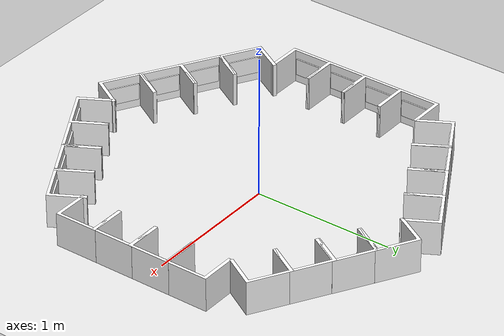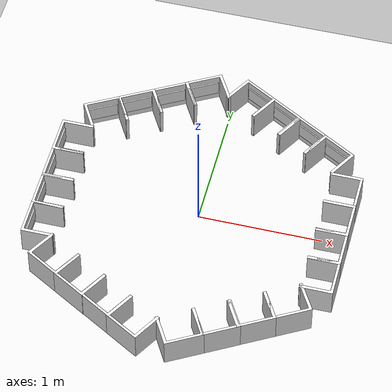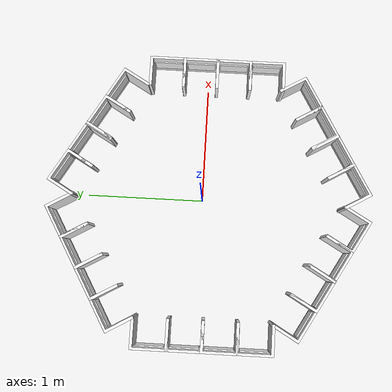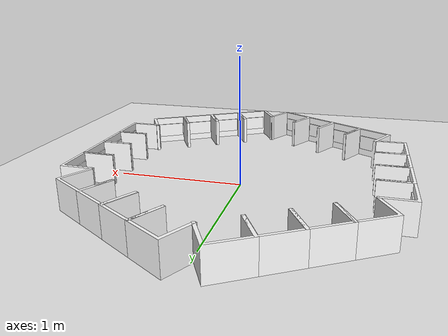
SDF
<sdf version='1.7'>
  <world name='tam_experiment'>
    <light name='sun' type='directional'>
      <cast_shadows>1</cast_shadows>
      <pose>0 0 4 0 -0 0</pose>
      <diffuse>1 1 1 1</diffuse>
      <specular>0.6 0.6 0.6 1</specular>
      <attenuation>
        <range>1500</range>
        <constant>0.9</constant>
        <linear>0.01</linear>
        <quadratic>0.005</quadratic>
      </attenuation>
      <direction>-0.5 0.1 -0.9</direction>
      <spot>
        <inner_angle>0</inner_angle>
        <outer_angle>0</outer_angle>
        <falloff>0</falloff>
      </spot>
    </light>
    <model name='ground_plane'>
      <static>1</static>
      <link name='link'>
        <collision name='collision'>
          <geometry>
            <plane>
              <normal>0 0 1</normal>
              <size>100 100</size>
            </plane>
          </geometry>
          <surface>
            <contact>
              <collide_bitmask>65535</collide_bitmask>
              <ode/>
            </contact>
            <friction>
              <ode>
                <mu>100</mu>
                <mu2>50</mu2>
              </ode>
              <torsional>
                <ode/>
              </torsional>
            </friction>
            <bounce/>
          </surface>
          <max_contacts>10</max_contacts>
        </collision>
        <visual name='visual'>
          <cast_shadows>0</cast_shadows>
          <geometry>
            <plane>
              <normal>0 0 1</normal>
              <size>100 100</size>
            </plane>
          </geometry>
          <material>
            <script>
              <uri>file://media/materials/scripts/gazebo.material</uri>
              <name>Gazebo/White</name>
            </script>
          </material>
        </visual>
        <self_collide>0</self_collide>
        <enable_wind>0</enable_wind>
        <kinematic>0</kinematic>
      </link>
    </model>
    <gravity>0 0 -9.8</gravity>
    <magnetic_field>6e-06 2.3e-05 -4.2e-05</magnetic_field>
    <atmosphere type='adiabatic'/>
    <physics type='ode'>
      <max_step_size>0.001</max_step_size>
      <real_time_factor>1</real_time_factor>
      <real_time_update_rate>1000</real_time_update_rate>
    </physics>
    <scene>
      <ambient>0.4 0.4 0.4 1</ambient>
      <background>0.7 0.7 0.7 1</background>
      <shadows>1</shadows>
    </scene>
    <wind/>
    <spherical_coordinates>
      <surface_model>EARTH_WGS84</surface_model>
      <latitude_deg>0</latitude_deg>
      <longitude_deg>0</longitude_deg>
      <elevation>0</elevation>
      <heading_deg>0</heading_deg>
    </spherical_coordinates>
    <gui fullscreen='0'>
      <camera name='user_camera'>
        <pose>3.22959 3.94204 2.96165 -0 0.533795 -2.50701</pose>
        <view_controller>orbit</view_controller>
        <projection_type>perspective</projection_type>
      </camera>
    </gui>

    <!--       Top side (0–3)        -->
    <include>
      <uri>model://TAM</uri>
      <name>TAM_0</name>
      <pose>-1.1308 -0.4925 0 0 0 0</pose> <!-- Escalado 1.1 -->
    </include>
    <include>
      <uri>model://TAM</uri>
      <name>TAM_1</name>
      <pose>-1.1308 -0.2065 0 0 0 0</pose>
    </include>
    <include>
      <uri>model://TAM</uri>
      <name>TAM_2</name>
      <pose>-1.1308 0.0795 0 0 0 0</pose>
    </include>
    <include>
      <uri>model://TAM</uri>
      <name>TAM_3</name>
      <pose>-1.1308 0.3655 0 0 0 0</pose>
    </include>

    <!--    Upper right side (4–7)   -->
    <include>
      <uri>model://TAM</uri>
      <name>TAM_4</name>
      <pose>-0.9438 0.69 0 0 0 -1.048</pose>
    </include>
    <include>
      <uri>model://TAM</uri>
      <name>TAM_5</name>
      <pose>-0.6963 0.833 0 0 0 -1.048</pose>
    </include>
    <include>
      <uri>model://TAM</uri>
      <name>TAM_6</name>
      <pose>-0.4488 0.976 0 0 0 -1.048</pose>
    </include>
    <include>
      <uri>model://TAM</uri>
      <name>TAM_7</name>
      <pose>-0.2013 1.119 0 0 0 -1.048</pose>
    </include>

    <!--   Far right side (8–11)     -->
    <include>
      <uri>model://TAM</uri>
      <name>TAM_8</name>
      <pose>0.1617 1.119 0 0 0 -2.094</pose>
    </include>
    <include>
      <uri>model://TAM</uri>
      <name>TAM_9</name>
      <pose>0.4092 0.976 0 0 0 -2.094</pose>
    </include>
    <include>
      <uri>model://TAM</uri>
      <name>TAM_10</name>
      <pose>0.6512 0.8352 0 0 0 -2.094</pose>
    </include>
    <include>
      <uri>model://TAM</uri>
      <name>TAM_11</name>
      <pose>0.8987 0.6922 0 0 0 -2.094</pose>
    </include>

    <!--  Bottom right side (12–15)  -->
    <include>
      <uri>model://TAM</uri>
      <name>TAM_12</name>
      <pose>1.0857 0.3545 0 0 0 -3.142</pose>
    </include>
    <include>
      <uri>model://TAM</uri>
      <name>TAM_13</name>
      <pose>1.0857 0.0685 0 0 0 -3.142</pose>
    </include>
    <include>
      <uri>model://TAM</uri>
      <name>TAM_14</name>
      <pose>1.0857 -0.2175 0 0 0 -3.142</pose>
    </include>
    <include>
      <uri>model://TAM</uri>
      <name>TAM_15</name>
      <pose>1.0857 -0.5035 0 0 0 -3.142</pose>
    </include>

    <!--  Lower right side (16–19)   -->
    <include>
      <uri>model://TAM</uri>
      <name>TAM_16</name>
      <pose>0.8987 -0.806 0 0 0 2.094</pose>
    </include>
    <include>
      <uri>model://TAM</uri>
      <name>TAM_17</name>
      <pose>0.6512 -0.949 0 0 0 2.094</pose>
    </include>
    <include>
      <uri>model://TAM</uri>
      <name>TAM_18</name>
      <pose>0.4092 -1.0898 0 0 0 2.094</pose>
    </include>
    <include>
      <uri>model://TAM</uri>
      <name>TAM_19</name>
      <pose>0.1617 -1.2328 0 0 0 2.094</pose>
    </include>

    <!--   Bottom left side (20–23)  -->
    <include>
      <uri>model://TAM</uri>
      <name>TAM_20</name>
      <pose>-0.2013 -1.2328 0 0 0 1.048</pose>
    </include>
    <include>
      <uri>model://TAM</uri>
      <name>TAM_21</name>
      <pose>-0.4488 -1.0898 0 0 0 1.048</pose>
    </include>
    <include>
      <uri>model://TAM</uri>
      <name>TAM_22</name>
      <pose>-0.6963 -0.949 0 0 0 1.048</pose>
    </include>
    <include>
      <uri>model://TAM</uri>
      <name>TAM_23</name>
      <pose>-0.9438 -0.806 0 0 0 1.048</pose>
    </include>

  </world>
</sdf>

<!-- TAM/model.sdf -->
<sdf version="1.6">
  <model name="TAM">
    <static>true</static>
    <link name="base_link">
      <!-- Visual original del modelo (blanco por default) -->
      <visual name="visual">
        <geometry>
          <mesh>
            <uri>model://TAM/meshes/TAM.stl</uri>
            <scale>1 1.2 1</scale>
          </mesh>
        </geometry>
        <material>
          <ambient>1 1 1 1</ambient>
          <diffuse>1 1 1 1</diffuse>
          <specular>0.5 0.5 0.5 1</specular>
        </material>
      </visual>

      <!-- Visual adicional (rectángulo para cambio dinámico de color) -->
      <visual name="task_indicator">
        <pose>-0.105 0 0.12 0 0 0</pose> <!-- Ajusta la posición según necesidad -->
        <geometry>
          <box>
            <size>0.01 0.24 0.12</size> <!-- Ajusta tamaño según necesidad -->
          </box>
        </geometry>
        <material>
          <ambient>1 1 1 1</ambient>
          <diffuse>1 1 1 1</diffuse>
          <emissive>1 1 1 1</emissive> <!-- Brillo inicial (blanco standby) -->
        </material>
        <!-- Plugin de color  -->
        <plugin name="tam_color_plugin" filename="libTAMColorPlugin.so"/>
      </visual>

      <collision name="collision">
        <geometry>
          <mesh>
            <uri>model://TAM/meshes/TAM.stl</uri>
            <scale>1 1.2 1</scale>
          </mesh>
        </geometry>
      </collision>

    </link>
  </model>
</sdf>
